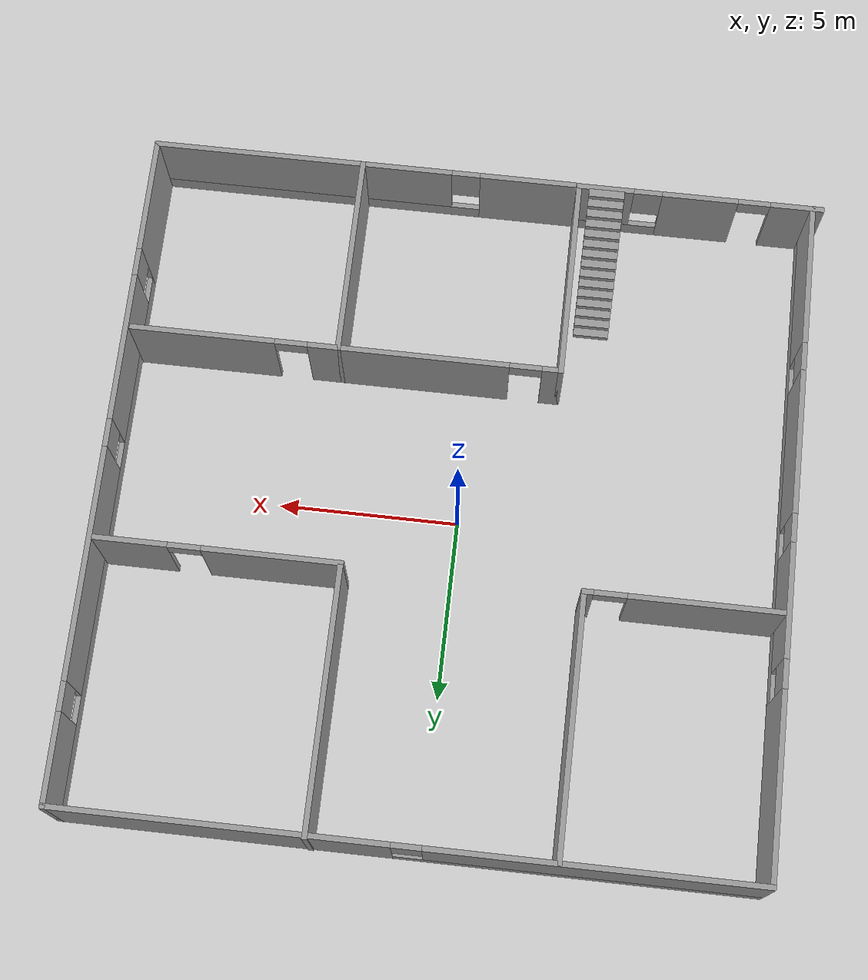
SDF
<?xml version='1.0'?>
<sdf version='1.7'>
  <model name='tony_house.world'>
    <pose>0.197951 -0.116708 0 0 -0 0</pose>
    <link name='Stairs_0'>
      <visual name='Stairs_0_Visual_0'>
        <pose>-3.39052 -5.99335 0.083333 0 -0 0</pose>
        <geometry>
          <box>
            <size>1 0.233333 0.166667</size>
          </box>
        </geometry>
        <material>
          <script>
            <uri>file://media/materials/scripts/gazebo.material</uri>
            <name>Gazebo/Grey</name>
          </script>
          <ambient>1 1 1 1</ambient>
        </material>
        <meta>
          <layer>0</layer>
        </meta>
      </visual>
      <collision name='Stairs_0_Collision_0'>
        <geometry>
          <box>
            <size>1 0.233333 0.166667</size>
          </box>
        </geometry>
        <pose>-3.39052 -5.99335 0.083333 0 -0 0</pose>
      </collision>
      <visual name='Stairs_0_Visual_1'>
        <pose>-3.39052 -6.22668 0.25 0 -0 0</pose>
        <geometry>
          <box>
            <size>1 0.233333 0.166667</size>
          </box>
        </geometry>
        <material>
          <script>
            <uri>file://media/materials/scripts/gazebo.material</uri>
            <name>Gazebo/Grey</name>
          </script>
          <ambient>1 1 1 1</ambient>
        </material>
        <meta>
          <layer>0</layer>
        </meta>
      </visual>
      <collision name='Stairs_0_Collision_1'>
        <geometry>
          <box>
            <size>1 0.233333 0.166667</size>
          </box>
        </geometry>
        <pose>-3.39052 -6.22668 0.25 0 -0 0</pose>
      </collision>
      <visual name='Stairs_0_Visual_2'>
        <pose>-3.39052 -6.46001 0.416667 0 -0 0</pose>
        <geometry>
          <box>
            <size>1 0.233333 0.166667</size>
          </box>
        </geometry>
        <material>
          <script>
            <uri>file://media/materials/scripts/gazebo.material</uri>
            <name>Gazebo/Grey</name>
          </script>
          <ambient>1 1 1 1</ambient>
        </material>
        <meta>
          <layer>0</layer>
        </meta>
      </visual>
      <collision name='Stairs_0_Collision_2'>
        <geometry>
          <box>
            <size>1 0.233333 0.166667</size>
          </box>
        </geometry>
        <pose>-3.39052 -6.46001 0.416667 0 -0 0</pose>
      </collision>
      <visual name='Stairs_0_Visual_3'>
        <pose>-3.39052 -6.69335 0.583333 0 -0 0</pose>
        <geometry>
          <box>
            <size>1 0.233333 0.166667</size>
          </box>
        </geometry>
        <material>
          <script>
            <uri>file://media/materials/scripts/gazebo.material</uri>
            <name>Gazebo/Grey</name>
          </script>
          <ambient>1 1 1 1</ambient>
        </material>
        <meta>
          <layer>0</layer>
        </meta>
      </visual>
      <collision name='Stairs_0_Collision_3'>
        <geometry>
          <box>
            <size>1 0.233333 0.166667</size>
          </box>
        </geometry>
        <pose>-3.39052 -6.69335 0.583333 0 -0 0</pose>
      </collision>
      <visual name='Stairs_0_Visual_4'>
        <pose>-3.39052 -6.92668 0.75 0 -0 0</pose>
        <geometry>
          <box>
            <size>1 0.233333 0.166667</size>
          </box>
        </geometry>
        <material>
          <script>
            <uri>file://media/materials/scripts/gazebo.material</uri>
            <name>Gazebo/Grey</name>
          </script>
          <ambient>1 1 1 1</ambient>
        </material>
        <meta>
          <layer>0</layer>
        </meta>
      </visual>
      <collision name='Stairs_0_Collision_4'>
        <geometry>
          <box>
            <size>1 0.233333 0.166667</size>
          </box>
        </geometry>
        <pose>-3.39052 -6.92668 0.75 0 -0 0</pose>
      </collision>
      <visual name='Stairs_0_Visual_5'>
        <pose>-3.39052 -7.16001 0.916667 0 -0 0</pose>
        <geometry>
          <box>
            <size>1 0.233333 0.166667</size>
          </box>
        </geometry>
        <material>
          <script>
            <uri>file://media/materials/scripts/gazebo.material</uri>
            <name>Gazebo/Grey</name>
          </script>
          <ambient>1 1 1 1</ambient>
        </material>
        <meta>
          <layer>0</layer>
        </meta>
      </visual>
      <collision name='Stairs_0_Collision_5'>
        <geometry>
          <box>
            <size>1 0.233333 0.166667</size>
          </box>
        </geometry>
        <pose>-3.39052 -7.16001 0.916667 0 -0 0</pose>
      </collision>
      <visual name='Stairs_0_Visual_6'>
        <pose>-3.39052 -7.39335 1.08333 0 -0 0</pose>
        <geometry>
          <box>
            <size>1 0.233333 0.166667</size>
          </box>
        </geometry>
        <material>
          <script>
            <uri>file://media/materials/scripts/gazebo.material</uri>
            <name>Gazebo/Grey</name>
          </script>
          <ambient>1 1 1 1</ambient>
        </material>
        <meta>
          <layer>0</layer>
        </meta>
      </visual>
      <collision name='Stairs_0_Collision_6'>
        <geometry>
          <box>
            <size>1 0.233333 0.166667</size>
          </box>
        </geometry>
        <pose>-3.39052 -7.39335 1.08333 0 -0 0</pose>
      </collision>
      <visual name='Stairs_0_Visual_7'>
        <pose>-3.39052 -7.62668 1.25 0 -0 0</pose>
        <geometry>
          <box>
            <size>1 0.233333 0.166667</size>
          </box>
        </geometry>
        <material>
          <script>
            <uri>file://media/materials/scripts/gazebo.material</uri>
            <name>Gazebo/Grey</name>
          </script>
          <ambient>1 1 1 1</ambient>
        </material>
        <meta>
          <layer>0</layer>
        </meta>
      </visual>
      <collision name='Stairs_0_Collision_7'>
        <geometry>
          <box>
            <size>1 0.233333 0.166667</size>
          </box>
        </geometry>
        <pose>-3.39052 -7.62668 1.25 0 -0 0</pose>
      </collision>
      <visual name='Stairs_0_Visual_8'>
        <pose>-3.39052 -7.86001 1.41667 0 -0 0</pose>
        <geometry>
          <box>
            <size>1 0.233333 0.166667</size>
          </box>
        </geometry>
        <material>
          <script>
            <uri>file://media/materials/scripts/gazebo.material</uri>
            <name>Gazebo/Grey</name>
          </script>
          <ambient>1 1 1 1</ambient>
        </material>
        <meta>
          <layer>0</layer>
        </meta>
      </visual>
      <collision name='Stairs_0_Collision_8'>
        <geometry>
          <box>
            <size>1 0.233333 0.166667</size>
          </box>
        </geometry>
        <pose>-3.39052 -7.86001 1.41667 0 -0 0</pose>
      </collision>
      <visual name='Stairs_0_Visual_9'>
        <pose>-3.39052 -8.09335 1.58333 0 -0 0</pose>
        <geometry>
          <box>
            <size>1 0.233333 0.166667</size>
          </box>
        </geometry>
        <material>
          <script>
            <uri>file://media/materials/scripts/gazebo.material</uri>
            <name>Gazebo/Grey</name>
          </script>
          <ambient>1 1 1 1</ambient>
        </material>
        <meta>
          <layer>0</layer>
        </meta>
      </visual>
      <collision name='Stairs_0_Collision_9'>
        <geometry>
          <box>
            <size>1 0.233333 0.166667</size>
          </box>
        </geometry>
        <pose>-3.39052 -8.09335 1.58333 0 -0 0</pose>
      </collision>
      <visual name='Stairs_0_Visual_10'>
        <pose>-3.39052 -8.32668 1.75 0 -0 0</pose>
        <geometry>
          <box>
            <size>1 0.233333 0.166667</size>
          </box>
        </geometry>
        <material>
          <script>
            <uri>file://media/materials/scripts/gazebo.material</uri>
            <name>Gazebo/Grey</name>
          </script>
          <ambient>1 1 1 1</ambient>
        </material>
        <meta>
          <layer>0</layer>
        </meta>
      </visual>
      <collision name='Stairs_0_Collision_10'>
        <geometry>
          <box>
            <size>1 0.233333 0.166667</size>
          </box>
        </geometry>
        <pose>-3.39052 -8.32668 1.75 0 -0 0</pose>
      </collision>
      <visual name='Stairs_0_Visual_11'>
        <pose>-3.39052 -8.56001 1.91667 0 -0 0</pose>
        <geometry>
          <box>
            <size>1 0.233333 0.166667</size>
          </box>
        </geometry>
        <material>
          <script>
            <uri>file://media/materials/scripts/gazebo.material</uri>
            <name>Gazebo/Grey</name>
          </script>
          <ambient>1 1 1 1</ambient>
        </material>
        <meta>
          <layer>0</layer>
        </meta>
      </visual>
      <collision name='Stairs_0_Collision_11'>
        <geometry>
          <box>
            <size>1 0.233333 0.166667</size>
          </box>
        </geometry>
        <pose>-3.39052 -8.56001 1.91667 0 -0 0</pose>
      </collision>
      <visual name='Stairs_0_Visual_12'>
        <pose>-3.39052 -8.79335 2.08333 0 -0 0</pose>
        <geometry>
          <box>
            <size>1 0.233333 0.166667</size>
          </box>
        </geometry>
        <material>
          <script>
            <uri>file://media/materials/scripts/gazebo.material</uri>
            <name>Gazebo/Grey</name>
          </script>
          <ambient>1 1 1 1</ambient>
        </material>
        <meta>
          <layer>0</layer>
        </meta>
      </visual>
      <collision name='Stairs_0_Collision_12'>
        <geometry>
          <box>
            <size>1 0.233333 0.166667</size>
          </box>
        </geometry>
        <pose>-3.39052 -8.79335 2.08333 0 -0 0</pose>
      </collision>
      <visual name='Stairs_0_Visual_13'>
        <pose>-3.39052 -9.02668 2.25 0 -0 0</pose>
        <geometry>
          <box>
            <size>1 0.233333 0.166667</size>
          </box>
        </geometry>
        <material>
          <script>
            <uri>file://media/materials/scripts/gazebo.material</uri>
            <name>Gazebo/Grey</name>
          </script>
          <ambient>1 1 1 1</ambient>
        </material>
        <meta>
          <layer>0</layer>
        </meta>
      </visual>
      <collision name='Stairs_0_Collision_13'>
        <geometry>
          <box>
            <size>1 0.233333 0.166667</size>
          </box>
        </geometry>
        <pose>-3.39052 -9.02668 2.25 0 -0 0</pose>
      </collision>
      <visual name='Stairs_0_Visual_14'>
        <pose>-3.39052 -9.26001 2.41667 0 -0 0</pose>
        <geometry>
          <box>
            <size>1 0.233333 0.166667</size>
          </box>
        </geometry>
        <material>
          <script>
            <uri>file://media/materials/scripts/gazebo.material</uri>
            <name>Gazebo/Grey</name>
          </script>
          <ambient>1 1 1 1</ambient>
        </material>
        <meta>
          <layer>0</layer>
        </meta>
      </visual>
      <collision name='Stairs_0_Collision_14'>
        <geometry>
          <box>
            <size>1 0.233333 0.166667</size>
          </box>
        </geometry>
        <pose>-3.39052 -9.26001 2.41667 0 -0 0</pose>
      </collision>
    </link>
    <link name='Wall_1'>
      <pose>-6.01156 -9.43056 0 0 -0 0.001171</pose>
      <visual name='Wall_1_Visual_0'>
        <pose>-2.72986 0 1.25 0 -0 0</pose>
        <geometry>
          <box>
            <size>1.51416 0.15 2.5</size>
          </box>
        </geometry>
        <material>
          <script>
            <uri>file://media/materials/scripts/gazebo.material</uri>
            <name>Gazebo/Grey</name>
          </script>
          <ambient>1 1 1 1</ambient>
        </material>
        <meta>
          <layer>0</layer>
        </meta>
      </visual>
      <collision name='Wall_1_Collision_0'>
        <geometry>
          <box>
            <size>1.51416 0.15 2.5</size>
          </box>
        </geometry>
        <pose>-2.72986 0 1.25 0 -0 0</pose>
      </collision>
      <visual name='Wall_1_Visual_1'>
        <pose>-0.004916 0 1.25 0 -0 0</pose>
        <geometry>
          <box>
            <size>2.13573 0.15 2.5</size>
          </box>
        </geometry>
        <material>
          <script>
            <uri>file://media/materials/scripts/gazebo.material</uri>
            <name>Gazebo/Grey</name>
          </script>
          <ambient>1 1 1 1</ambient>
        </material>
        <meta>
          <layer>0</layer>
        </meta>
      </visual>
      <collision name='Wall_1_Collision_1'>
        <geometry>
          <box>
            <size>2.13573 0.15 2.5</size>
          </box>
        </geometry>
        <pose>-0.004916 0 1.25 0 -0 0</pose>
      </collision>
      <visual name='Wall_1_Visual_2'>
        <pose>2.27494 0 0.25 0 -0 0</pose>
        <geometry>
          <box>
            <size>2.42399 0.15 0.5</size>
          </box>
        </geometry>
        <material>
          <script>
            <uri>file://media/materials/scripts/gazebo.material</uri>
            <name>Gazebo/Grey</name>
          </script>
          <ambient>1 1 1 1</ambient>
        </material>
        <meta>
          <layer>0</layer>
        </meta>
      </visual>
      <collision name='Wall_1_Collision_2'>
        <geometry>
          <box>
            <size>2.42399 0.15 0.5</size>
          </box>
        </geometry>
        <pose>2.27494 0 0.25 0 -0 0</pose>
      </collision>
      <visual name='Wall_1_Visual_3'>
        <pose>2.67494 0 1.5 0 -0 0</pose>
        <geometry>
          <box>
            <size>1.62399 0.15 2</size>
          </box>
        </geometry>
        <material>
          <script>
            <uri>file://media/materials/scripts/gazebo.material</uri>
            <name>Gazebo/Grey</name>
          </script>
          <ambient>1 1 1 1</ambient>
        </material>
        <meta>
          <layer>0</layer>
        </meta>
      </visual>
      <collision name='Wall_1_Collision_3'>
        <geometry>
          <box>
            <size>1.62399 0.15 2</size>
          </box>
        </geometry>
        <pose>2.67494 0 1.5 0 -0 0</pose>
      </collision>
      <visual name='Wall_1_Visual_4'>
        <pose>1.46295 0 1.9 0 -0 0</pose>
        <geometry>
          <box>
            <size>0.8 0.15 1.2</size>
          </box>
        </geometry>
        <material>
          <script>
            <uri>file://media/materials/scripts/gazebo.material</uri>
            <name>Gazebo/Grey</name>
          </script>
          <ambient>1 1 1 1</ambient>
        </material>
        <meta>
          <layer>0</layer>
        </meta>
      </visual>
      <collision name='Wall_1_Collision_4'>
        <geometry>
          <box>
            <size>0.8 0.15 1.2</size>
          </box>
        </geometry>
        <pose>1.46295 0 1.9 0 -0 0</pose>
      </collision>
      <visual name='Wall_1_Visual_5'>
        <pose>-1.52278 0 2.25 0 -0 0</pose>
        <geometry>
          <box>
            <size>0.9 0.15 0.5</size>
          </box>
        </geometry>
        <material>
          <script>
            <uri>file://media/materials/scripts/gazebo.material</uri>
            <name>Gazebo/Grey</name>
          </script>
          <ambient>1 1 1 1</ambient>
        </material>
        <meta>
          <layer>0</layer>
        </meta>
      </visual>
      <collision name='Wall_1_Collision_5'>
        <geometry>
          <box>
            <size>0.9 0.15 0.5</size>
          </box>
        </geometry>
        <pose>-1.52278 0 2.25 0 -0 0</pose>
      </collision>
    </link>
    <link name='Wall_10'>
      <pose>3.32538 -3.82656 0 0 -0 0</pose>
      <visual name='Wall_10_Visual_0'>
        <pose>-5.70576 0 1.25 0 -0 0</pose>
        <geometry>
          <box>
            <size>0.588485 0.15 2.5</size>
          </box>
        </geometry>
        <material>
          <script>
            <uri>file://media/materials/scripts/gazebo.material</uri>
            <name>Gazebo/Grey</name>
          </script>
          <ambient>1 1 1 1</ambient>
        </material>
        <meta>
          <layer>0</layer>
        </meta>
      </visual>
      <collision name='Wall_10_Collision_0'>
        <geometry>
          <box>
            <size>0.588485 0.15 2.5</size>
          </box>
        </geometry>
        <pose>-5.70576 0 1.25 0 -0 0</pose>
      </collision>
      <visual name='Wall_10_Visual_1'>
        <pose>-1.72323 0 1.25 0 -0 0</pose>
        <geometry>
          <box>
            <size>5.57657 0.15 2.5</size>
          </box>
        </geometry>
        <material>
          <script>
            <uri>file://media/materials/scripts/gazebo.material</uri>
            <name>Gazebo/Grey</name>
          </script>
          <ambient>1 1 1 1</ambient>
        </material>
        <meta>
          <layer>0</layer>
        </meta>
      </visual>
      <collision name='Wall_10_Collision_1'>
        <geometry>
          <box>
            <size>5.57657 0.15 2.5</size>
          </box>
        </geometry>
        <pose>-1.72323 0 1.25 0 -0 0</pose>
      </collision>
      <visual name='Wall_10_Visual_2'>
        <pose>3.98253 0 1.25 0 -0 0</pose>
        <geometry>
          <box>
            <size>4.03494 0.15 2.5</size>
          </box>
        </geometry>
        <material>
          <script>
            <uri>file://media/materials/scripts/gazebo.material</uri>
            <name>Gazebo/Grey</name>
          </script>
          <ambient>1 1 1 1</ambient>
        </material>
        <meta>
          <layer>0</layer>
        </meta>
      </visual>
      <collision name='Wall_10_Collision_2'>
        <geometry>
          <box>
            <size>4.03494 0.15 2.5</size>
          </box>
        </geometry>
        <pose>3.98253 0 1.25 0 -0 0</pose>
      </collision>
      <visual name='Wall_10_Visual_3'>
        <pose>-4.96152 0 2.25 0 -0 0</pose>
        <geometry>
          <box>
            <size>0.9 0.15 0.5</size>
          </box>
        </geometry>
        <material>
          <script>
            <uri>file://media/materials/scripts/gazebo.material</uri>
            <name>Gazebo/Grey</name>
          </script>
          <ambient>1 1 1 1</ambient>
        </material>
        <meta>
          <layer>0</layer>
        </meta>
      </visual>
      <collision name='Wall_10_Collision_3'>
        <geometry>
          <box>
            <size>0.9 0.15 0.5</size>
          </box>
        </geometry>
        <pose>-4.96152 0 2.25 0 -0 0</pose>
      </collision>
      <visual name='Wall_10_Visual_4'>
        <pose>1.51506 0 2.25 0 -0 0</pose>
        <geometry>
          <box>
            <size>0.9 0.15 0.5</size>
          </box>
        </geometry>
        <material>
          <script>
            <uri>file://media/materials/scripts/gazebo.material</uri>
            <name>Gazebo/Grey</name>
          </script>
          <ambient>1 1 1 1</ambient>
        </material>
        <meta>
          <layer>0</layer>
        </meta>
      </visual>
      <collision name='Wall_10_Collision_4'>
        <geometry>
          <box>
            <size>0.9 0.15 0.5</size>
          </box>
        </geometry>
        <pose>1.51506 0 2.25 0 -0 0</pose>
      </collision>
    </link>
    <link name='Wall_12'>
      <collision name='Wall_12_Collision'>
        <geometry>
          <box>
            <size>5.75 0.15 2.5</size>
          </box>
        </geometry>
        <pose>0 0 1.25 0 -0 0</pose>
      </collision>
      <visual name='Wall_12_Visual'>
        <pose>0 0 1.25 0 -0 0</pose>
        <geometry>
          <box>
            <size>5.75 0.15 2.5</size>
          </box>
        </geometry>
        <material>
          <script>
            <uri>file://media/materials/scripts/gazebo.material</uri>
            <name>Gazebo/Grey</name>
          </script>
          <ambient>1 1 1 1</ambient>
        </material>
        <meta>
          <layer>0</layer>
        </meta>
      </visual>
      <pose>3.54453 -6.62656 0 0 -0 -1.5708</pose>
    </link>
    <link name='Wall_14'>
      <pose>5.98556 2.23237 0 0 -0 0</pose>
      <visual name='Wall_14_Visual_0'>
        <pose>-1.46444 0 1.25 0 -0 0</pose>
        <geometry>
          <box>
            <size>3.82112 0.15 2.5</size>
          </box>
        </geometry>
        <material>
          <script>
            <uri>file://media/materials/scripts/gazebo.material</uri>
            <name>Gazebo/Grey</name>
          </script>
          <ambient>1 1 1 1</ambient>
        </material>
        <meta>
          <layer>0</layer>
        </meta>
      </visual>
      <collision name='Wall_14_Collision_0'>
        <geometry>
          <box>
            <size>3.82112 0.15 2.5</size>
          </box>
        </geometry>
        <pose>-1.46444 0 1.25 0 -0 0</pose>
      </collision>
      <visual name='Wall_14_Visual_1'>
        <pose>2.36056 0 1.25 0 -0 0</pose>
        <geometry>
          <box>
            <size>2.02888 0.15 2.5</size>
          </box>
        </geometry>
        <material>
          <script>
            <uri>file://media/materials/scripts/gazebo.material</uri>
            <name>Gazebo/Grey</name>
          </script>
          <ambient>1 1 1 1</ambient>
        </material>
        <meta>
          <layer>0</layer>
        </meta>
      </visual>
      <collision name='Wall_14_Collision_1'>
        <geometry>
          <box>
            <size>2.02888 0.15 2.5</size>
          </box>
        </geometry>
        <pose>2.36056 0 1.25 0 -0 0</pose>
      </collision>
      <visual name='Wall_14_Visual_2'>
        <pose>0.896121 0 2.25 0 -0 0</pose>
        <geometry>
          <box>
            <size>0.9 0.15 0.5</size>
          </box>
        </geometry>
        <material>
          <script>
            <uri>file://media/materials/scripts/gazebo.material</uri>
            <name>Gazebo/Grey</name>
          </script>
          <ambient>1 1 1 1</ambient>
        </material>
        <meta>
          <layer>0</layer>
        </meta>
      </visual>
      <collision name='Wall_14_Collision_2'>
        <geometry>
          <box>
            <size>0.9 0.15 0.5</size>
          </box>
        </geometry>
        <pose>0.896121 0 2.25 0 -0 0</pose>
      </collision>
    </link>
    <link name='Wall_18'>
      <collision name='Wall_18_Collision'>
        <geometry>
          <box>
            <size>7.25 0.15 2.5</size>
          </box>
        </geometry>
        <pose>0 0 1.25 0 -0 0</pose>
      </collision>
      <visual name='Wall_18_Visual'>
        <pose>0 0 1.25 0 -0 0</pose>
        <geometry>
          <box>
            <size>7.25 0.15 2.5</size>
          </box>
        </geometry>
        <material>
          <script>
            <uri>file://media/materials/scripts/gazebo.material</uri>
            <name>Gazebo/Grey</name>
          </script>
          <ambient>1 1 1 1</ambient>
        </material>
        <meta>
          <layer>0</layer>
        </meta>
      </visual>
      <pose>-3.77724 5.84349 0 0 -0 -1.5708</pose>
    </link>
    <link name='Wall_20'>
      <collision name='Wall_20_Collision'>
        <geometry>
          <box>
            <size>7.25 0.15 2.5</size>
          </box>
        </geometry>
        <pose>0 0 1.25 0 -0 0</pose>
      </collision>
      <visual name='Wall_20_Visual'>
        <pose>0 0 1.25 0 -0 0</pose>
        <geometry>
          <box>
            <size>7.25 0.15 2.5</size>
          </box>
        </geometry>
        <material>
          <script>
            <uri>file://media/materials/scripts/gazebo.material</uri>
            <name>Gazebo/Grey</name>
          </script>
          <ambient>1 1 1 1</ambient>
        </material>
        <meta>
          <layer>0</layer>
        </meta>
      </visual>
      <pose>2.68958 5.89002 0 0 -0 -1.5708</pose>
    </link>
    <link name='Wall_22'>
      <pose>-6.45224 2.29349 0 0 -0 3.14159</pose>
      <visual name='Wall_22_Visual_0'>
        <pose>-2.58857 0 1.25 0 -0 0</pose>
        <geometry>
          <box>
            <size>0.322859 0.15 2.5</size>
          </box>
        </geometry>
        <material>
          <script>
            <uri>file://media/materials/scripts/gazebo.material</uri>
            <name>Gazebo/Grey</name>
          </script>
          <ambient>1 1 1 1</ambient>
        </material>
        <meta>
          <layer>0</layer>
        </meta>
      </visual>
      <collision name='Wall_22_Collision_0'>
        <geometry>
          <box>
            <size>0.322859 0.15 2.5</size>
          </box>
        </geometry>
        <pose>-2.58857 0 1.25 0 -0 0</pose>
      </collision>
      <visual name='Wall_22_Visual_1'>
        <pose>0.611429 0 1.25 0 -0 0</pose>
        <geometry>
          <box>
            <size>4.27714 0.15 2.5</size>
          </box>
        </geometry>
        <material>
          <script>
            <uri>file://media/materials/scripts/gazebo.material</uri>
            <name>Gazebo/Grey</name>
          </script>
          <ambient>1 1 1 1</ambient>
        </material>
        <meta>
          <layer>0</layer>
        </meta>
      </visual>
      <collision name='Wall_22_Collision_1'>
        <geometry>
          <box>
            <size>4.27714 0.15 2.5</size>
          </box>
        </geometry>
        <pose>0.611429 0 1.25 0 -0 0</pose>
      </collision>
      <visual name='Wall_22_Visual_2'>
        <pose>-1.97714 0 2.25 0 -0 0</pose>
        <geometry>
          <box>
            <size>0.9 0.15 0.5</size>
          </box>
        </geometry>
        <material>
          <script>
            <uri>file://media/materials/scripts/gazebo.material</uri>
            <name>Gazebo/Grey</name>
          </script>
          <ambient>1 1 1 1</ambient>
        </material>
        <meta>
          <layer>0</layer>
        </meta>
      </visual>
      <collision name='Wall_22_Collision_2'>
        <geometry>
          <box>
            <size>0.9 0.15 0.5</size>
          </box>
        </geometry>
        <pose>-1.97714 0 2.25 0 -0 0</pose>
      </collision>
    </link>
    <link name='Wall_24'>
      <collision name='Wall_24_Collision'>
        <geometry>
          <box>
            <size>5.75 0.15 2.5</size>
          </box>
        </geometry>
        <pose>0 0 1.25 0 -0 0</pose>
      </collision>
      <visual name='Wall_24_Visual'>
        <pose>0 0 1.25 0 -0 0</pose>
        <geometry>
          <box>
            <size>5.75 0.15 2.5</size>
          </box>
        </geometry>
        <material>
          <script>
            <uri>file://media/materials/scripts/gazebo.material</uri>
            <name>Gazebo/Grey</name>
          </script>
          <ambient>1 1 1 1</ambient>
        </material>
        <meta>
          <layer>0</layer>
        </meta>
      </visual>
      <pose>-2.59962 -6.62656 0 0 -0 -1.5708</pose>
    </link>
    <link name='Wall_3'>
      <pose>3.49858 -9.44002 0 0 -0 0</pose>
      <visual name='Wall_3_Visual_0'>
        <pose>-4.64469 0 1.25 0 -0 0</pose>
        <geometry>
          <box>
            <size>2.71062 0.15 2.5</size>
          </box>
        </geometry>
        <material>
          <script>
            <uri>file://media/materials/scripts/gazebo.material</uri>
            <name>Gazebo/Grey</name>
          </script>
          <ambient>1 1 1 1</ambient>
        </material>
        <meta>
          <layer>0</layer>
        </meta>
      </visual>
      <collision name='Wall_3_Collision_0'>
        <geometry>
          <box>
            <size>2.71062 0.15 2.5</size>
          </box>
        </geometry>
        <pose>-4.64469 0 1.25 0 -0 0</pose>
      </collision>
      <visual name='Wall_3_Visual_1'>
        <pose>1.35531 0 0.25 0 -0 0</pose>
        <geometry>
          <box>
            <size>9.28938 0.15 0.5</size>
          </box>
        </geometry>
        <material>
          <script>
            <uri>file://media/materials/scripts/gazebo.material</uri>
            <name>Gazebo/Grey</name>
          </script>
          <ambient>1 1 1 1</ambient>
        </material>
        <meta>
          <layer>0</layer>
        </meta>
      </visual>
      <collision name='Wall_3_Collision_1'>
        <geometry>
          <box>
            <size>9.28938 0.15 0.5</size>
          </box>
        </geometry>
        <pose>1.35531 0 0.25 0 -0 0</pose>
      </collision>
      <visual name='Wall_3_Visual_2'>
        <pose>1.75531 0 1.5 0 -0 0</pose>
        <geometry>
          <box>
            <size>8.48938 0.15 2</size>
          </box>
        </geometry>
        <material>
          <script>
            <uri>file://media/materials/scripts/gazebo.material</uri>
            <name>Gazebo/Grey</name>
          </script>
          <ambient>1 1 1 1</ambient>
        </material>
        <meta>
          <layer>0</layer>
        </meta>
      </visual>
      <collision name='Wall_3_Collision_2'>
        <geometry>
          <box>
            <size>8.48938 0.15 2</size>
          </box>
        </geometry>
        <pose>1.75531 0 1.5 0 -0 0</pose>
      </collision>
      <visual name='Wall_3_Visual_3'>
        <pose>-2.88938 0 1.9 0 -0 0</pose>
        <geometry>
          <box>
            <size>0.8 0.15 1.2</size>
          </box>
        </geometry>
        <material>
          <script>
            <uri>file://media/materials/scripts/gazebo.material</uri>
            <name>Gazebo/Grey</name>
          </script>
          <ambient>1 1 1 1</ambient>
        </material>
        <meta>
          <layer>0</layer>
        </meta>
      </visual>
      <collision name='Wall_3_Collision_3'>
        <geometry>
          <box>
            <size>0.8 0.15 1.2</size>
          </box>
        </geometry>
        <pose>-2.88938 0 1.9 0 -0 0</pose>
      </collision>
    </link>
    <link name='Wall_4'>
      <pose>9.42358 -0.015016 0 0 -0 1.5708</pose>
      <visual name='Wall_4_Visual_0'>
        <pose>-7.8218 0 1.25 0 -0 0</pose>
        <geometry>
          <box>
            <size>3.3564 0.15 2.5</size>
          </box>
        </geometry>
        <material>
          <script>
            <uri>file://media/materials/scripts/gazebo.material</uri>
            <name>Gazebo/Grey</name>
          </script>
          <ambient>1 1 1 1</ambient>
        </material>
        <meta>
          <layer>0</layer>
        </meta>
      </visual>
      <collision name='Wall_4_Collision_0'>
        <geometry>
          <box>
            <size>3.3564 0.15 2.5</size>
          </box>
        </geometry>
        <pose>-7.8218 0 1.25 0 -0 0</pose>
      </collision>
      <visual name='Wall_4_Visual_1'>
        <pose>1.6782 0 0.25 0 -0 0</pose>
        <geometry>
          <box>
            <size>15.6436 0.15 0.5</size>
          </box>
        </geometry>
        <material>
          <script>
            <uri>file://media/materials/scripts/gazebo.material</uri>
            <name>Gazebo/Grey</name>
          </script>
          <ambient>1 1 1 1</ambient>
        </material>
        <meta>
          <layer>0</layer>
        </meta>
      </visual>
      <collision name='Wall_4_Collision_1'>
        <geometry>
          <box>
            <size>15.6436 0.15 0.5</size>
          </box>
        </geometry>
        <pose>1.6782 0 0.25 0 -0 0</pose>
      </collision>
      <visual name='Wall_4_Visual_2'>
        <pose>-3.21561 0 1.5 0 -0 0</pose>
        <geometry>
          <box>
            <size>4.25599 0.15 2</size>
          </box>
        </geometry>
        <material>
          <script>
            <uri>file://media/materials/scripts/gazebo.material</uri>
            <name>Gazebo/Grey</name>
          </script>
          <ambient>1 1 1 1</ambient>
        </material>
        <meta>
          <layer>0</layer>
        </meta>
      </visual>
      <collision name='Wall_4_Collision_2'>
        <geometry>
          <box>
            <size>4.25599 0.15 2</size>
          </box>
        </geometry>
        <pose>-3.21561 0 1.5 0 -0 0</pose>
      </collision>
      <visual name='Wall_4_Visual_3'>
        <pose>2.94431 0 1.5 0 -0 0</pose>
        <geometry>
          <box>
            <size>6.46384 0.15 2</size>
          </box>
        </geometry>
        <material>
          <script>
            <uri>file://media/materials/scripts/gazebo.material</uri>
            <name>Gazebo/Grey</name>
          </script>
          <ambient>1 1 1 1</ambient>
        </material>
        <meta>
          <layer>0</layer>
        </meta>
      </visual>
      <collision name='Wall_4_Collision_3'>
        <geometry>
          <box>
            <size>6.46384 0.15 2</size>
          </box>
        </geometry>
        <pose>2.94431 0 1.5 0 -0 0</pose>
      </collision>
      <visual name='Wall_4_Visual_4'>
        <pose>8.23811 0 1.5 0 -0 0</pose>
        <geometry>
          <box>
            <size>2.52377 0.15 2</size>
          </box>
        </geometry>
        <material>
          <script>
            <uri>file://media/materials/scripts/gazebo.material</uri>
            <name>Gazebo/Grey</name>
          </script>
          <ambient>1 1 1 1</ambient>
        </material>
        <meta>
          <layer>0</layer>
        </meta>
      </visual>
      <collision name='Wall_4_Collision_4'>
        <geometry>
          <box>
            <size>2.52377 0.15 2</size>
          </box>
        </geometry>
        <pose>8.23811 0 1.5 0 -0 0</pose>
      </collision>
      <visual name='Wall_4_Visual_5'>
        <pose>-5.7436 0 1.9 0 -0 0</pose>
        <geometry>
          <box>
            <size>0.8 0.15 1.2</size>
          </box>
        </geometry>
        <material>
          <script>
            <uri>file://media/materials/scripts/gazebo.material</uri>
            <name>Gazebo/Grey</name>
          </script>
          <ambient>1 1 1 1</ambient>
        </material>
        <meta>
          <layer>0</layer>
        </meta>
      </visual>
      <collision name='Wall_4_Collision_5'>
        <geometry>
          <box>
            <size>0.8 0.15 1.2</size>
          </box>
        </geometry>
        <pose>-5.7436 0 1.9 0 -0 0</pose>
      </collision>
      <visual name='Wall_4_Visual_6'>
        <pose>-0.687612 0 1.9 0 -0 0</pose>
        <geometry>
          <box>
            <size>0.8 0.15 1.2</size>
          </box>
        </geometry>
        <material>
          <script>
            <uri>file://media/materials/scripts/gazebo.material</uri>
            <name>Gazebo/Grey</name>
          </script>
          <ambient>1 1 1 1</ambient>
        </material>
        <meta>
          <layer>0</layer>
        </meta>
      </visual>
      <collision name='Wall_4_Collision_6'>
        <geometry>
          <box>
            <size>0.8 0.15 1.2</size>
          </box>
        </geometry>
        <pose>-0.687612 0 1.9 0 -0 0</pose>
      </collision>
      <visual name='Wall_4_Visual_7'>
        <pose>6.57623 0 1.9 0 -0 0</pose>
        <geometry>
          <box>
            <size>0.8 0.15 1.2</size>
          </box>
        </geometry>
        <material>
          <script>
            <uri>file://media/materials/scripts/gazebo.material</uri>
            <name>Gazebo/Grey</name>
          </script>
          <ambient>1 1 1 1</ambient>
        </material>
        <meta>
          <layer>0</layer>
        </meta>
      </visual>
      <collision name='Wall_4_Collision_7'>
        <geometry>
          <box>
            <size>0.8 0.15 1.2</size>
          </box>
        </geometry>
        <pose>6.57623 0 1.9 0 -0 0</pose>
      </collision>
    </link>
    <link name='Wall_5'>
      <pose>0.123583 9.40998 0 0 -0 3.14159</pose>
      <visual name='Wall_5_Visual_0'>
        <pose>-4.87823 0 1.25 0 -0 0</pose>
        <geometry>
          <box>
            <size>8.99354 0.15 2.5</size>
          </box>
        </geometry>
        <material>
          <script>
            <uri>file://media/materials/scripts/gazebo.material</uri>
            <name>Gazebo/Grey</name>
          </script>
          <ambient>1 1 1 1</ambient>
        </material>
        <meta>
          <layer>0</layer>
        </meta>
      </visual>
      <collision name='Wall_5_Collision_0'>
        <geometry>
          <box>
            <size>8.99354 0.15 2.5</size>
          </box>
        </geometry>
        <pose>-4.87823 0 1.25 0 -0 0</pose>
      </collision>
      <visual name='Wall_5_Visual_1'>
        <pose>4.49677 0 0.25 0 -0 0</pose>
        <geometry>
          <box>
            <size>9.75646 0.15 0.5</size>
          </box>
        </geometry>
        <material>
          <script>
            <uri>file://media/materials/scripts/gazebo.material</uri>
            <name>Gazebo/Grey</name>
          </script>
          <ambient>1 1 1 1</ambient>
        </material>
        <meta>
          <layer>0</layer>
        </meta>
      </visual>
      <collision name='Wall_5_Collision_1'>
        <geometry>
          <box>
            <size>9.75646 0.15 0.5</size>
          </box>
        </geometry>
        <pose>4.49677 0 0.25 0 -0 0</pose>
      </collision>
      <visual name='Wall_5_Visual_2'>
        <pose>4.89677 0 1.5 0 -0 0</pose>
        <geometry>
          <box>
            <size>8.95646 0.15 2</size>
          </box>
        </geometry>
        <material>
          <script>
            <uri>file://media/materials/scripts/gazebo.material</uri>
            <name>Gazebo/Grey</name>
          </script>
          <ambient>1 1 1 1</ambient>
        </material>
        <meta>
          <layer>0</layer>
        </meta>
      </visual>
      <collision name='Wall_5_Collision_2'>
        <geometry>
          <box>
            <size>8.95646 0.15 2</size>
          </box>
        </geometry>
        <pose>4.89677 0 1.5 0 -0 0</pose>
      </collision>
      <visual name='Wall_5_Visual_3'>
        <pose>0.018538 0 1.9 0 -0 0</pose>
        <geometry>
          <box>
            <size>0.8 0.15 1.2</size>
          </box>
        </geometry>
        <material>
          <script>
            <uri>file://media/materials/scripts/gazebo.material</uri>
            <name>Gazebo/Grey</name>
          </script>
          <ambient>1 1 1 1</ambient>
        </material>
        <meta>
          <layer>0</layer>
        </meta>
      </visual>
      <collision name='Wall_5_Collision_3'>
        <geometry>
          <box>
            <size>0.8 0.15 1.2</size>
          </box>
        </geometry>
        <pose>0.018538 0 1.9 0 -0 0</pose>
      </collision>
    </link>
    <link name='Wall_6'>
      <pose>-9.17642 -0.015016 0 0 -0 -1.5708</pose>
      <visual name='Wall_6_Visual_0'>
        <pose>-6.9156 0 1.25 0 -0 0</pose>
        <geometry>
          <box>
            <size>5.1688 0.15 2.5</size>
          </box>
        </geometry>
        <material>
          <script>
            <uri>file://media/materials/scripts/gazebo.material</uri>
            <name>Gazebo/Grey</name>
          </script>
          <ambient>1 1 1 1</ambient>
        </material>
        <meta>
          <layer>0</layer>
        </meta>
      </visual>
      <collision name='Wall_6_Collision_0'>
        <geometry>
          <box>
            <size>5.1688 0.15 2.5</size>
          </box>
        </geometry>
        <pose>-6.9156 0 1.25 0 -0 0</pose>
      </collision>
      <visual name='Wall_6_Visual_1'>
        <pose>2.5844 0 0.25 0 -0 0</pose>
        <geometry>
          <box>
            <size>13.8312 0.15 0.5</size>
          </box>
        </geometry>
        <material>
          <script>
            <uri>file://media/materials/scripts/gazebo.material</uri>
            <name>Gazebo/Grey</name>
          </script>
          <ambient>1 1 1 1</ambient>
        </material>
        <meta>
          <layer>0</layer>
        </meta>
      </visual>
      <collision name='Wall_6_Collision_1'>
        <geometry>
          <box>
            <size>13.8312 0.15 0.5</size>
          </box>
        </geometry>
        <pose>2.5844 0 0.25 0 -0 0</pose>
      </collision>
      <visual name='Wall_6_Visual_2'>
        <pose>-1.94373 0 1.5 0 -0 0</pose>
        <geometry>
          <box>
            <size>3.17493 0.15 2</size>
          </box>
        </geometry>
        <material>
          <script>
            <uri>file://media/materials/scripts/gazebo.material</uri>
            <name>Gazebo/Grey</name>
          </script>
          <ambient>1 1 1 1</ambient>
        </material>
        <meta>
          <layer>0</layer>
        </meta>
      </visual>
      <collision name='Wall_6_Collision_2'>
        <geometry>
          <box>
            <size>3.17493 0.15 2</size>
          </box>
        </geometry>
        <pose>-1.94373 0 1.5 0 -0 0</pose>
      </collision>
      <visual name='Wall_6_Visual_3'>
        <pose>2.50201 0 1.5 0 -0 0</pose>
        <geometry>
          <box>
            <size>4.11655 0.15 2</size>
          </box>
        </geometry>
        <material>
          <script>
            <uri>file://media/materials/scripts/gazebo.material</uri>
            <name>Gazebo/Grey</name>
          </script>
          <ambient>1 1 1 1</ambient>
        </material>
        <meta>
          <layer>0</layer>
        </meta>
      </visual>
      <collision name='Wall_6_Collision_3'>
        <geometry>
          <box>
            <size>4.11655 0.15 2</size>
          </box>
        </geometry>
        <pose>2.50201 0 1.5 0 -0 0</pose>
      </collision>
      <visual name='Wall_6_Visual_4'>
        <pose>7.43014 0 1.5 0 -0 0</pose>
        <geometry>
          <box>
            <size>4.13971 0.15 2</size>
          </box>
        </geometry>
        <material>
          <script>
            <uri>file://media/materials/scripts/gazebo.material</uri>
            <name>Gazebo/Grey</name>
          </script>
          <ambient>1 1 1 1</ambient>
        </material>
        <meta>
          <layer>0</layer>
        </meta>
      </visual>
      <collision name='Wall_6_Collision_4'>
        <geometry>
          <box>
            <size>4.13971 0.15 2</size>
          </box>
        </geometry>
        <pose>7.43014 0 1.5 0 -0 0</pose>
      </collision>
      <visual name='Wall_6_Visual_5'>
        <pose>-3.9312 0 1.9 0 -0 0</pose>
        <geometry>
          <box>
            <size>0.8 0.15 1.2</size>
          </box>
        </geometry>
        <material>
          <script>
            <uri>file://media/materials/scripts/gazebo.material</uri>
            <name>Gazebo/Grey</name>
          </script>
          <ambient>1 1 1 1</ambient>
        </material>
        <meta>
          <layer>0</layer>
        </meta>
      </visual>
      <collision name='Wall_6_Collision_5'>
        <geometry>
          <box>
            <size>0.8 0.15 1.2</size>
          </box>
        </geometry>
        <pose>-3.9312 0 1.9 0 -0 0</pose>
      </collision>
      <visual name='Wall_6_Visual_6'>
        <pose>0.043735 0 1.9 0 -0 0</pose>
        <geometry>
          <box>
            <size>0.8 0.15 1.2</size>
          </box>
        </geometry>
        <material>
          <script>
            <uri>file://media/materials/scripts/gazebo.material</uri>
            <name>Gazebo/Grey</name>
          </script>
          <ambient>1 1 1 1</ambient>
        </material>
        <meta>
          <layer>0</layer>
        </meta>
      </visual>
      <collision name='Wall_6_Collision_6'>
        <geometry>
          <box>
            <size>0.8 0.15 1.2</size>
          </box>
        </geometry>
        <pose>0.043735 0 1.9 0 -0 0</pose>
      </collision>
      <visual name='Wall_6_Visual_7'>
        <pose>4.96028 0 1.9 0 -0 0</pose>
        <geometry>
          <box>
            <size>0.8 0.15 1.2</size>
          </box>
        </geometry>
        <material>
          <script>
            <uri>file://media/materials/scripts/gazebo.material</uri>
            <name>Gazebo/Grey</name>
          </script>
          <ambient>1 1 1 1</ambient>
        </material>
        <meta>
          <layer>0</layer>
        </meta>
      </visual>
      <collision name='Wall_6_Collision_7'>
        <geometry>
          <box>
            <size>0.8 0.15 1.2</size>
          </box>
        </geometry>
        <pose>4.96028 0 1.9 0 -0 0</pose>
      </collision>
    </link>
    <static>1</static>
  </model>
</sdf>
